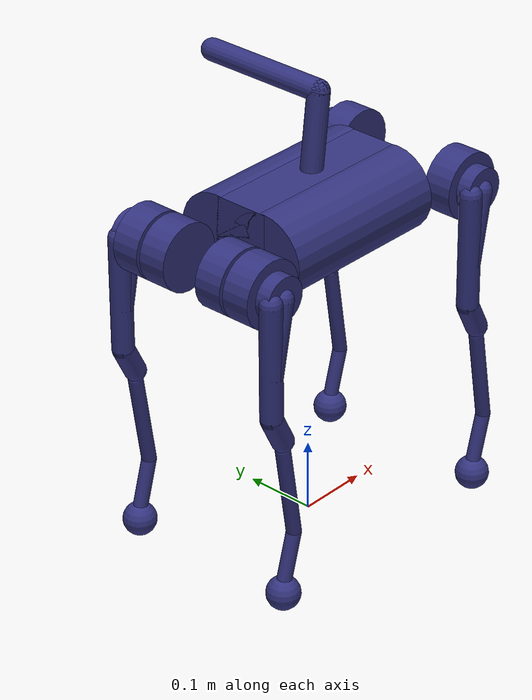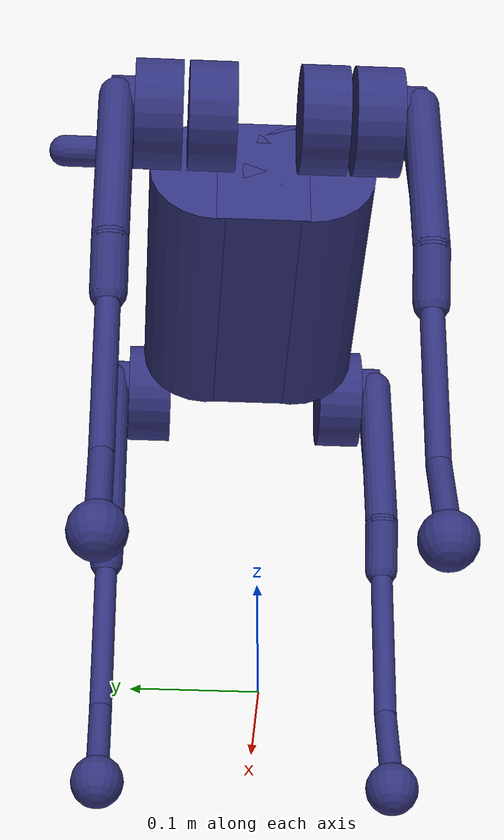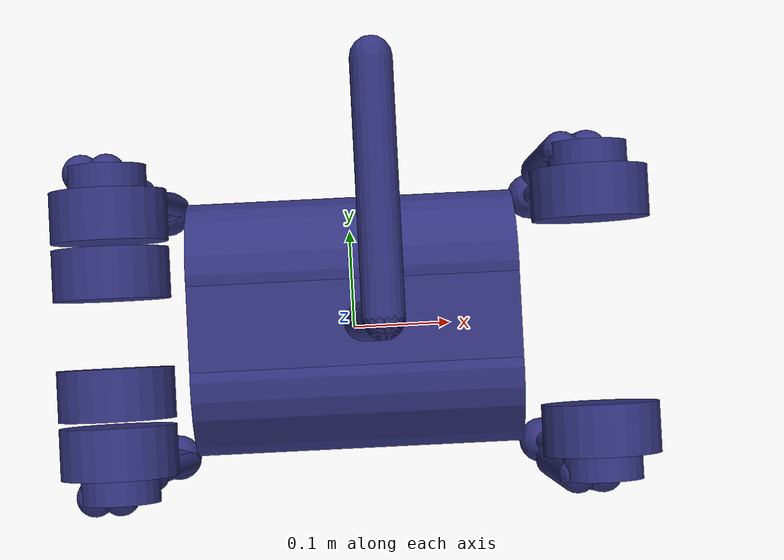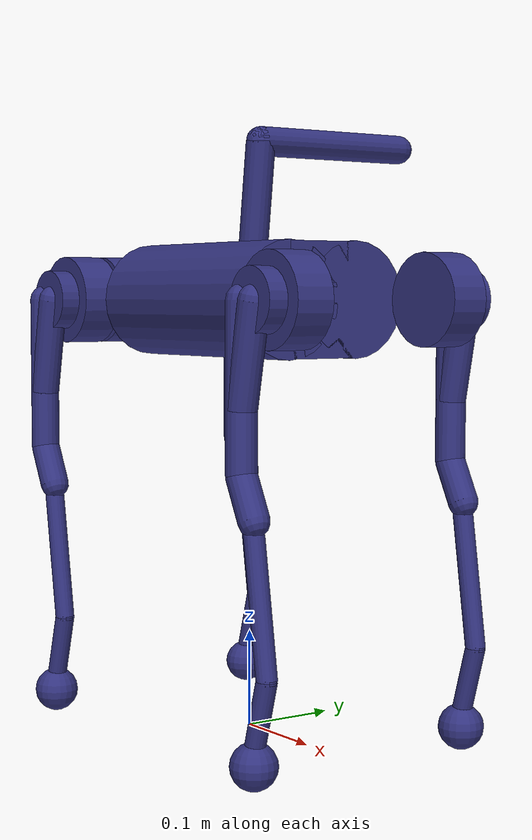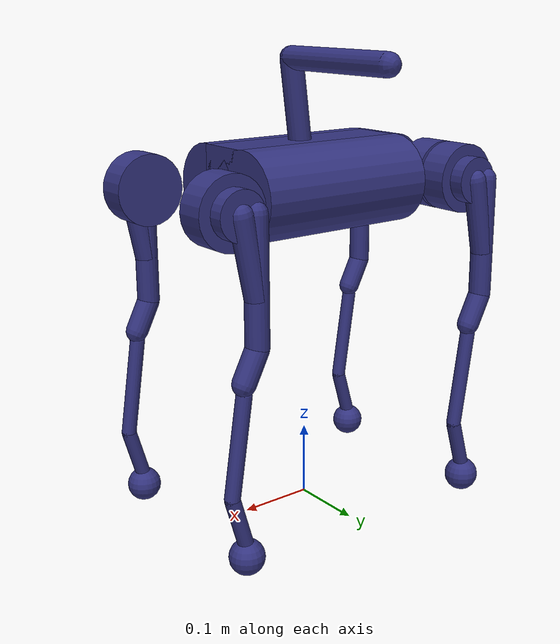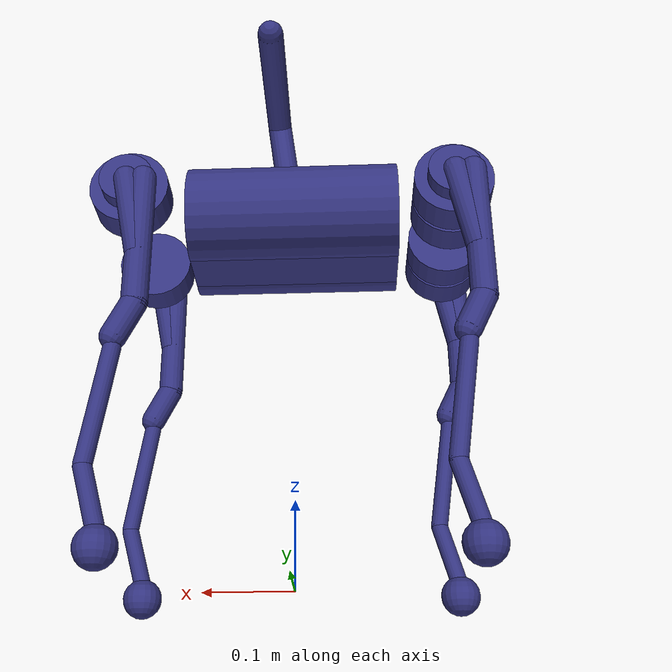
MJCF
<!-- add arm body and new collision -->

<mujoco model="go1 feet only">
  <compiler angle="radian" autolimits="true"/>

  <option iterations="1" ls_iterations="5" timestep="0.004" integrator="Euler">
    <flag eulerdamp="disable"/>
  </option>

  <default>
    <default class="go1">
      <!-- This globaly disables all collisions. -->
      <geom condim="1" contype="0" conaffinity="0"/>
      <joint axis="0 1 0" armature="0.005" damping="0.5"/>
      <position forcerange="-23.7 23.7" inheritrange="1" kp="35"/>
      <default class="abduction">
        <joint axis="1 0 0" range="-0.863 0.863" frictionloss="0.3"/>
      </default>
      <default class="hip">
        <joint range="-0.686 4.501" frictionloss="0.3"/>
      </default>
      <default class="knee">
        <joint range="-2.818 -0.888" frictionloss="1.0"/>
        <position forcerange="-35.55 35.55"/>
      </default>
      <default class="collision">
        <geom group="1" type="capsule" rgba="0.2 0.2 0.5 1"/>
        <default class="hip_left1">
          <geom size="0.046 0.02" pos="0 0.045 0" quat="1 1 0 0" type="cylinder"/>
        </default>
        <default class="hip_left2">
          <geom size="0.031 0.02" pos="0 0.065 0" quat="1 1 0 0" type="cylinder"/>
        </default>
        <default class="hip_left3">
          <geom size="0.046 0.02" quat="1 1 0 0" type="cylinder"/>
        </default>
        <default class="hip_right1">
          <geom size="0.046 0.02" pos="0 -0.045 0" quat="1 1 0 0" type="cylinder"/>
        </default>
        <default class="hip_right2">
          <geom size="0.031 0.02" pos="0 -0.065 0" quat="1 1 0 0" type="cylinder"/>
        </default>
        <default class="hip_right3">
          <geom size="0.046 0.02" quat="1 1 0 0" type="cylinder"/>
        </default>
        <default class="thigh1">
          <geom size="0.015" fromto="-0.02 0 0 -0.02 0 -0.16"/>
        </default>
        <default class="thigh2">
          <geom size="0.015" fromto="0 0 0 -0.02 0 -0.1"/>
        </default>
        <default class="thigh3">
          <geom size="0.015" fromto="-0.02 0 -0.16 0 0 -0.2"/>
        </default>
        <default class="calf1">
          <geom size="0.01" fromto="0 0 0 0.02 0 -0.13"/>
        </default>
        <default class="calf2">
          <geom size="0.01" fromto="0.02 0 -0.13 0 0 -0.2"/>
        </default>
        <!-- new arm1 geom -->
        <default class="arm1">
          <geom size="0.015" fromto="0.0 0 0 0.02 0 0.16"/>
        </default>
        <!-- new arm2 geom with collision -->
        <default class="arm2">
          <geom size="0.015" fromto="0.02 0 0.16 0.02 0.18 0.16"/>
        </default>
        <default class="foot">
          <geom type="sphere" size="0.023" pos="0 0 -0.213" solimp="0.9 .95 0.023" contype="0" conaffinity="1"/>
        </default>
      </default>
    </default>
  </default>

  <asset>
    <material name="dark" rgba="0.2 0.2 0.2 1"/>
  </asset>

  <worldbody>
    <light name="spotlight" mode="targetbodycom" target="trunk" pos="3 0 4"/>
    <body name="trunk" pos="0 0 0.445" childclass="go1">
      <camera name="track" pos="0.846 -1.3 0.316" xyaxes="0.866 0.500 0.000 -0.171 0.296 0.940" mode="trackcom"/>
      <camera name="top" pos="-1 0 1" xyaxes="0 -1 0 0.7 0 0.7" mode="trackcom"/>
      <camera name="side" pos="0 -1 .3" xyaxes="1 0 0 0 1 2" mode="trackcom"/>
      <camera name="back" pos="-1 0 .3" xyaxes="0 -1 0 1 0 2" mode="trackcom"/>
      <site name="head" pos="0.3 0 0" rgba="1 0 0 1" size="0.02" group="5"/>
      <inertial pos="0.0223 0.002 -0.0005" quat="-0.00342088 0.705204 0.000106698 0.708996" mass="5.204"
        diaginertia="0.0716565 0.0630105 0.0168101"/>
      <freejoint/>
      <geom class="collision" size="0.125 0.04 0.057" type="box"/>
      <geom class="collision" quat="1 0 1 0" pos="0 -0.04 0" size="0.058 0.125" type="cylinder"/>
      <geom class="collision" quat="1 0 1 0" pos="0 +0.04 0" size="0.058 0.125" type="cylinder"/>
      <site name="imu" pos="-0.01592 -0.06659 -0.00617" group="5"/>
      <body name="FR_hip" pos="0.1881 -0.04675 0">
        <inertial pos="-0.0049166 0.00762615 -8.865e-05" quat="0.507341 0.514169 0.495027 0.482891" mass="0.68"
          diaginertia="0.000734064 0.000468438 0.000398719"/>
        <joint class="abduction" name="FR_hip_joint"/>
        <geom class="hip_right1"/>
        <geom class="hip_right2"/>
        <body name="FR_thigh" pos="0 -0.08 0">
          <inertial pos="-0.00304722 0.019315 -0.0305004" quat="0.65243 -0.0272313 0.0775126 0.753383" mass="1.009"
            diaginertia="0.00478717 0.00460903 0.000709268"/>
          <joint class="hip" name="FR_thigh_joint"/>
          <geom class="thigh1"/>
          <geom class="thigh2"/>
          <geom class="thigh3"/>
          <body name="FR_calf" pos="0 0 -0.213">
            <inertial pos="0.00429862 0.000976676 -0.146197" quat="0.691246 0.00357467 0.00511118 0.722592"
              mass="0.195862" diaginertia="0.00149767 0.00148468 3.58427e-05"/>
            <joint class="knee" name="FR_calf_joint"/>
            <geom class="calf1"/>
            <geom class="calf2"/>
            <geom name="FR" class="foot"/>
            <site name="FR" pos="0 0 -0.213" type="sphere" size="0.023" group="5"/>
          </body>
        </body>
      </body>
      <body name="FL_hip" pos="0.1881 0.04675 0">
        <inertial pos="-0.0049166 -0.00762615 -8.865e-05" quat="0.482891 0.495027 0.514169 0.507341" mass="0.68"
          diaginertia="0.000734064 0.000468438 0.000398719"/>
        <joint class="abduction" name="FL_hip_joint"/>
        <geom class="hip_left1"/>
        <geom class="hip_left2"/>
        <body name="FL_thigh" pos="0 0.08 0">
          <inertial pos="-0.00304722 -0.019315 -0.0305004" quat="0.753383 0.0775126 -0.0272313 0.65243" mass="1.009"
            diaginertia="0.00478717 0.00460903 0.000709268"/>
          <joint class="hip" name="FL_thigh_joint"/>
          <geom class="thigh1"/>
          <geom class="thigh2"/>
          <geom class="thigh3"/>
          <body name="FL_calf" pos="0 0 -0.213">
            <inertial pos="0.00429862 0.000976676 -0.146197" quat="0.691246 0.00357467 0.00511118 0.722592"
              mass="0.195862" diaginertia="0.00149767 0.00148468 3.58427e-05"/>
            <joint class="knee" name="FL_calf_joint"/>
            <geom class="calf1"/>
            <geom class="calf2"/>
            <geom name="FL" class="foot"/>
            <site name="FL" pos="0 0 -0.213" type="sphere" size="0.023" group="5"/>
          </body>
        </body>
      </body>
      <body name="RR_hip" pos="-0.1881 -0.04675 0">
        <inertial pos="0.0049166 0.00762615 -8.865e-05" quat="0.495027 0.482891 0.507341 0.514169" mass="0.68"
          diaginertia="0.000734064 0.000468438 0.000398719"/>
        <joint class="abduction" name="RR_hip_joint"/>
        <geom class="hip_right1"/>
        <geom class="hip_right2"/>
        <geom class="hip_right3"/>
        <body name="RR_thigh" pos="0 -0.08 0">
          <inertial pos="-0.00304722 0.019315 -0.0305004" quat="0.65243 -0.0272313 0.0775126 0.753383" mass="1.009"
            diaginertia="0.00478717 0.00460903 0.000709268"/>
          <joint class="hip" name="RR_thigh_joint"/>
          <geom class="thigh1"/>
          <geom class="thigh2"/>
          <geom class="thigh3"/>
          <body name="RR_calf" pos="0 0 -0.213">
            <inertial pos="0.00429862 0.000976676 -0.146197" quat="0.691246 0.00357467 0.00511118 0.722592"
              mass="0.195862" diaginertia="0.00149767 0.00148468 3.58427e-05"/>
            <joint class="knee" name="RR_calf_joint"/>
            <geom class="calf1"/>
            <geom class="calf2"/>
            <geom name="RR" class="foot"/>
            <site name="RR" pos="0 0 -0.213" type="sphere" size="0.023" group="5"/>
          </body>
        </body>
      </body>
      <body name="RL_hip" pos="-0.1881 0.04675 0">
        <inertial pos="0.0049166 -0.00762615 -8.865e-05" quat="0.514169 0.507341 0.482891 0.495027" mass="0.68"
          diaginertia="0.000734064 0.000468438 0.000398719"/>
        <joint class="abduction" name="RL_hip_joint"/>
        <geom class="hip_left1"/>
        <geom class="hip_left2"/>
        <geom class="hip_left3"/>
        <body name="RL_thigh" pos="0 0.08 0">
          <inertial pos="-0.00304722 -0.019315 -0.0305004" quat="0.753383 0.0775126 -0.0272313 0.65243" mass="1.009"
            diaginertia="0.00478717 0.00460903 0.000709268"/>
          <joint class="hip" name="RL_thigh_joint"/>
          <geom class="thigh1"/>
          <geom class="thigh2"/>
          <geom class="thigh3"/>
          <body name="RL_calf" pos="0 0 -0.213">
            <inertial pos="0.00429862 0.000976676 -0.146197" quat="0.691246 0.00357467 0.00511118 0.722592"
              mass="0.195862" diaginertia="0.00149767 0.00148468 3.58427e-05"/>
            <joint class="knee" name="RL_calf_joint"/>
            <geom class="calf1"/>
            <geom class="calf2"/>
            <geom name="RL" class="foot"/>
            <site name="RL" pos="0 0 -0.213" type="sphere" size="0.023" group="5"/>
          </body>
        </body>
      </body>
      <body name="fake" pos="0.0 0.0 0">
        <inertial pos="0.02 0.18 0.16" quat="0.482891 0.495027 0.514169 0.507341" mass="0.68"
          diaginertia="0.000734064 0.000468438 0.000398719"/>
        <joint class="abduction" name="fake_hip_joint"/>
          <geom class="arm1"/>
          <geom class="arm2" solimp="0.9 .95 0.023" contype="0" conaffinity="1"/>
      </body>
    </body>
  </worldbody>

  <actuator>
    <position class="abduction" name="FR_hip" joint="FR_hip_joint"/>
    <position class="hip" name="FR_thigh" joint="FR_thigh_joint"/>
    <position class="knee" name="FR_calf" joint="FR_calf_joint"/>
    <position class="abduction" name="FL_hip" joint="FL_hip_joint"/>
    <position class="hip" name="FL_thigh" joint="FL_thigh_joint"/>
    <position class="knee" name="FL_calf" joint="FL_calf_joint"/>
    <position class="abduction" name="RR_hip" joint="RR_hip_joint"/>
    <position class="hip" name="RR_thigh" joint="RR_thigh_joint"/>
    <position class="knee" name="RR_calf" joint="RR_calf_joint"/>
    <position class="abduction" name="RL_hip" joint="RL_hip_joint"/>
    <position class="hip" name="RL_thigh" joint="RL_thigh_joint"/>
    <position class="knee" name="RL_calf" joint="RL_calf_joint"/>
    <position class="abduction" name="RL_hip_fake" joint="fake_hip_joint"/>
  </actuator>

  <sensor>
    <gyro site="imu" name="gyro"/>
    <velocimeter site="imu" name="local_linvel"/>
    <accelerometer site="imu" name="accelerometer"/>
    <framepos objtype="site" objname="imu" name="position"/>
    <framezaxis objtype="site" objname="imu" name="upvector"/>
    <framexaxis objtype="site" objname="imu" name="forwardvector"/>
    <framelinvel objtype="site" objname="imu" name="global_linvel"/>
    <frameangvel objtype="site" objname="imu" name="global_angvel"/>
    <framequat objtype="site" objname="imu" name="orientation"/>
    <framelinvel objtype="site" objname="FR" name="FR_global_linvel"/>
    <framelinvel objtype="site" objname="FL" name="FL_global_linvel"/>
    <framelinvel objtype="site" objname="RR" name="RR_global_linvel"/>
    <framelinvel objtype="site" objname="RL" name="RL_global_linvel"/>
    <framepos objtype="site" objname="FR" name="FR_pos" reftype="site" refname="imu"/>
    <framepos objtype="site" objname="FL" name="FL_pos" reftype="site" refname="imu"/>
    <framepos objtype="site" objname="RR" name="RR_pos" reftype="site" refname="imu"/>
    <framepos objtype="site" objname="RL" name="RL_pos" reftype="site" refname="imu"/>
  </sensor>
</mujoco>
